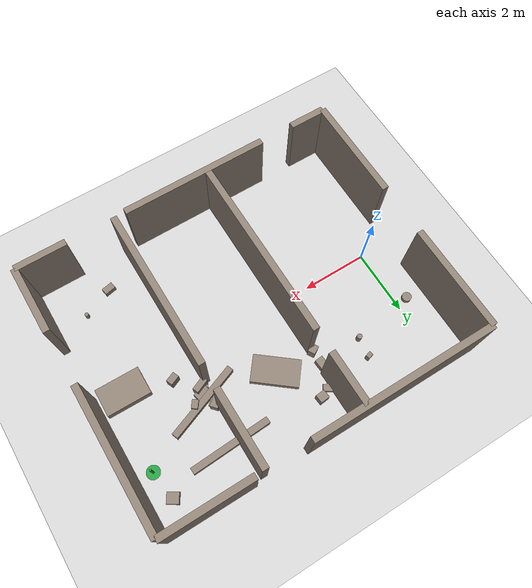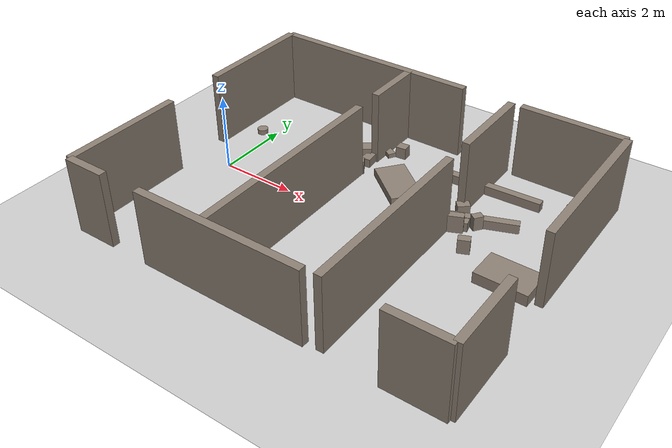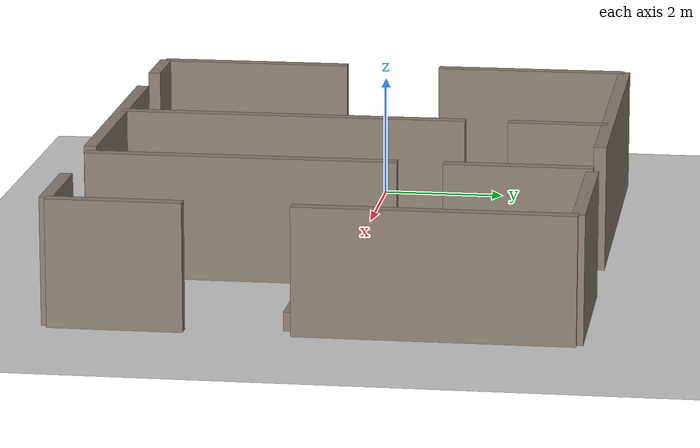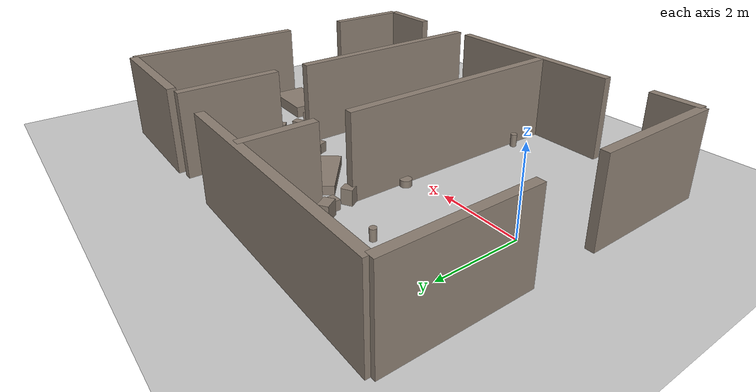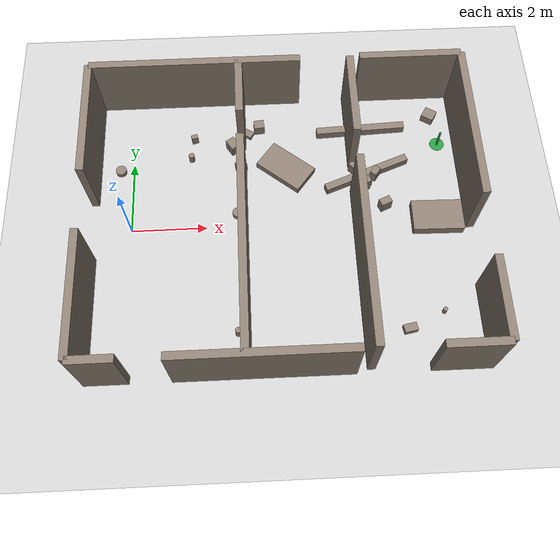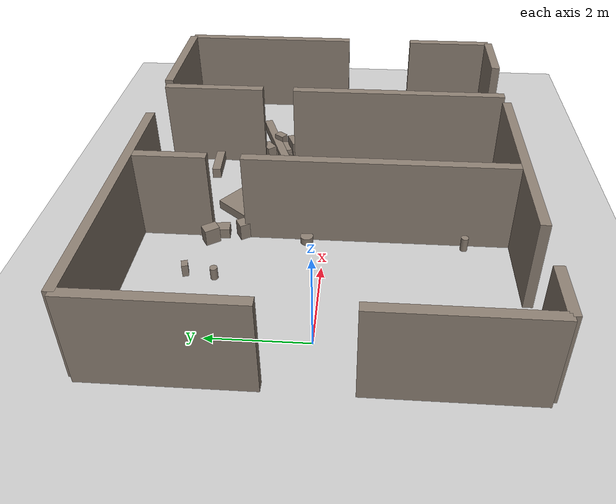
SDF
<sdf version="1.6">
 <world name="default">
  <light name="sun" type="directional">
   <pose>0 0 10 0 -0 0</pose>
   <diffuse>0.8 0.8 0.8 1</diffuse>
   <specular>0.1 0.1 0.1 1</specular>
   <attenuation>
    <range>1000</range>
    <constant>0.9</constant>
    <linear>0.01</linear>
    <quadratic>0.001</quadratic>
   </attenuation>
   <direction>-0.5 0.5 -1</direction>
  </light>
  <model name="ground_plane">
   <static>1</static>
   <link name="link">
    <collision name="collision">
     <geometry><plane><normal>0 0 1</normal><size>100 100</size></plane></geometry>
     <surface><friction><ode><mu>100</mu><mu2>50</mu2></ode></friction></surface>
    </collision>
    <visual name="visual">
     <cast_shadows>0</cast_shadows>
     <geometry><plane><normal>0 0 1</normal><size>100 100</size></plane></geometry>
     <material>
      <script><uri>file://media/materials/scripts/gazebo.material</uri><name>Gazebo/Grey</name></script>
     </material>
    </visual>
   </link>
  </model>
  <gravity>0 0 -9.8</gravity>
  <magnetic_field>6e-06 2.3e-05 -4.2e-05</magnetic_field>
  <atmosphere type="adiabatic"/>
  <physics name="default_physics" default="0" type="ode">
   <max_step_size>0.001</max_step_size>
   <real_time_factor>1</real_time_factor>
   <real_time_update_rate>1000</real_time_update_rate>
  </physics>
  <scene><ambient>0.4 0.4 0.4 1</ambient><background>0.7 0.7 0.7 1</background><shadows>1</shadows></scene>
  <spherical_coordinates>
   <surface_model>EARTH_WGS84</surface_model>
   <latitude_deg>0</latitude_deg>
   <longitude_deg>0</longitude_deg>
   <elevation>0</elevation>
   <heading_deg>0</heading_deg>
  </spherical_coordinates>
  <model name="outer0_0">
   <static>1</static>
   <pose>-1.000 -2.400 1.000 0 0 1.5708</pose>
   <link name="l">
    <collision name="c"><geometry><box><size>3.200 0.200 2.000</size></box></geometry></collision>
    <visual name="v">
     <geometry><box><size>3.200 0.200 2.000</size></box></geometry>
     <material><ambient>0.55 0.5 0.45 1</ambient><diffuse>0.55 0.5 0.45 1</diffuse></material>
    </visual>
   </link>
  </model>
  <model name="outer0_1">
   <static>1</static>
   <pose>-1.000 2.400 1.000 0 0 1.5708</pose>
   <link name="l">
    <collision name="c"><geometry><box><size>3.200 0.200 2.000</size></box></geometry></collision>
    <visual name="v">
     <geometry><box><size>3.200 0.200 2.000</size></box></geometry>
     <material><ambient>0.55 0.5 0.45 1</ambient><diffuse>0.55 0.5 0.45 1</diffuse></material>
    </visual>
   </link>
  </model>
  <model name="outer1_0">
   <static>1</static>
   <pose>9.000 -2.957 1.000 0 0 1.5708</pose>
   <link name="l">
    <collision name="c"><geometry><box><size>2.085 0.200 2.000</size></box></geometry></collision>
    <visual name="v">
     <geometry><box><size>2.085 0.200 2.000</size></box></geometry>
     <material><ambient>0.55 0.5 0.45 1</ambient><diffuse>0.55 0.5 0.45 1</diffuse></material>
    </visual>
   </link>
  </model>
  <model name="outer1_1">
   <static>1</static>
   <pose>9.000 1.861 1.000 0 0 1.5708</pose>
   <link name="l">
    <collision name="c"><geometry><box><size>4.278 0.200 2.000</size></box></geometry></collision>
    <visual name="v">
     <geometry><box><size>4.278 0.200 2.000</size></box></geometry>
     <material><ambient>0.55 0.5 0.45 1</ambient><diffuse>0.55 0.5 0.45 1</diffuse></material>
    </visual>
   </link>
  </model>
  <model name="outer2_0">
   <static>1</static>
   <pose>-0.442 -4.000 1.000 0 0 0.0000</pose>
   <link name="l">
    <collision name="c"><geometry><box><size>1.115 0.200 2.000</size></box></geometry></collision>
    <visual name="v">
     <geometry><box><size>1.115 0.200 2.000</size></box></geometry>
     <material><ambient>0.55 0.5 0.45 1</ambient><diffuse>0.55 0.5 0.45 1</diffuse></material>
    </visual>
   </link>
  </model>
  <model name="outer2_1">
   <static>1</static>
   <pose>3.401 -4.000 1.000 0 0 0.0000</pose>
   <link name="l">
    <collision name="c"><geometry><box><size>4.491 0.200 2.000</size></box></geometry></collision>
    <visual name="v">
     <geometry><box><size>4.491 0.200 2.000</size></box></geometry>
     <material><ambient>0.55 0.5 0.45 1</ambient><diffuse>0.55 0.5 0.45 1</diffuse></material>
    </visual>
   </link>
  </model>
  <model name="outer2_2">
   <static>1</static>
   <pose>8.230 -4.000 1.000 0 0 0.0000</pose>
   <link name="l">
    <collision name="c"><geometry><box><size>1.540 0.200 2.000</size></box></geometry></collision>
    <visual name="v">
     <geometry><box><size>1.540 0.200 2.000</size></box></geometry>
     <material><ambient>0.55 0.5 0.45 1</ambient><diffuse>0.55 0.5 0.45 1</diffuse></material>
    </visual>
   </link>
  </model>
  <model name="outer3_0">
   <static>1</static>
   <pose>1.832 4.000 1.000 0 0 0.0000</pose>
   <link name="l">
    <collision name="c"><geometry><box><size>5.664 0.200 2.000</size></box></geometry></collision>
    <visual name="v">
     <geometry><box><size>5.664 0.200 2.000</size></box></geometry>
     <material><ambient>0.55 0.5 0.45 1</ambient><diffuse>0.55 0.5 0.45 1</diffuse></material>
    </visual>
   </link>
  </model>
  <model name="outer3_1">
   <static>1</static>
   <pose>7.635 4.000 1.000 0 0 0.0000</pose>
   <link name="l">
    <collision name="c"><geometry><box><size>2.729 0.200 2.000</size></box></geometry></collision>
    <visual name="v">
     <geometry><box><size>2.729 0.200 2.000</size></box></geometry>
     <material><ambient>0.55 0.5 0.45 1</ambient><diffuse>0.55 0.5 0.45 1</diffuse></material>
    </visual>
   </link>
  </model>
  <model name="part0_0">
   <static>1</static>
   <pose>3.000 -1.157 1.000 0 0 1.5708</pose>
   <link name="l">
    <collision name="c"><geometry><box><size>5.686 0.200 2.000</size></box></geometry></collision>
    <visual name="v">
     <geometry><box><size>5.686 0.200 2.000</size></box></geometry>
     <material><ambient>0.55 0.5 0.45 1</ambient><diffuse>0.55 0.5 0.45 1</diffuse></material>
    </visual>
   </link>
  </model>
  <model name="part0_1">
   <static>1</static>
   <pose>3.000 3.194 1.000 0 0 1.5708</pose>
   <link name="l">
    <collision name="c"><geometry><box><size>1.613 0.200 2.000</size></box></geometry></collision>
    <visual name="v">
     <geometry><box><size>1.613 0.200 2.000</size></box></geometry>
     <material><ambient>0.55 0.5 0.45 1</ambient><diffuse>0.55 0.5 0.45 1</diffuse></material>
    </visual>
   </link>
  </model>
  <model name="part1_0">
   <static>1</static>
   <pose>6.000 -1.529 1.000 0 0 1.5708</pose>
   <link name="l">
    <collision name="c"><geometry><box><size>4.942 0.200 2.000</size></box></geometry></collision>
    <visual name="v">
     <geometry><box><size>4.942 0.200 2.000</size></box></geometry>
     <material><ambient>0.55 0.5 0.45 1</ambient><diffuse>0.55 0.5 0.45 1</diffuse></material>
    </visual>
   </link>
  </model>
  <model name="part1_1">
   <static>1</static>
   <pose>6.000 2.833 1.000 0 0 1.5708</pose>
   <link name="l">
    <collision name="c"><geometry><box><size>2.335 0.200 2.000</size></box></geometry></collision>
    <visual name="v">
     <geometry><box><size>2.335 0.200 2.000</size></box></geometry>
     <material><ambient>0.55 0.5 0.45 1</ambient><diffuse>0.55 0.5 0.45 1</diffuse></material>
    </visual>
   </link>
  </model>
  <model name="rubble_13">
   <static>1</static>
   <pose>2.955 1.746 0.183 0 0 2.1068</pose>
   <link name="l">
    <collision name="c"><geometry><box><size>0.219 0.259 0.366</size></box></geometry></collision>
    <visual name="v">
     <geometry><box><size>0.219 0.259 0.366</size></box></geometry>
     <material><ambient>0.55 0.5 0.45 1</ambient><diffuse>0.55 0.5 0.45 1</diffuse></material>
    </visual>
   </link>
  </model>
  <model name="rubble_14">
   <static>1</static>
   <pose>2.740 2.408 0.184 0 0 2.1537</pose>
   <link name="l">
    <collision name="c"><geometry><box><size>0.323 0.247 0.367</size></box></geometry></collision>
    <visual name="v">
     <geometry><box><size>0.323 0.247 0.367</size></box></geometry>
     <material><ambient>0.55 0.5 0.45 1</ambient><diffuse>0.55 0.5 0.45 1</diffuse></material>
    </visual>
   </link>
  </model>
  <model name="rubble_15">
   <static>1</static>
   <pose>2.944 2.208 0.119 0 0 1.6504</pose>
   <link name="l">
    <collision name="c"><geometry><box><size>0.347 0.248 0.238</size></box></geometry></collision>
    <visual name="v">
     <geometry><box><size>0.347 0.248 0.238</size></box></geometry>
     <material><ambient>0.55 0.5 0.45 1</ambient><diffuse>0.55 0.5 0.45 1</diffuse></material>
    </visual>
   </link>
  </model>
  <model name="rubble_16">
   <static>1</static>
   <pose>6.274 1.190 0.121 0 0 1.7955</pose>
   <link name="l">
    <collision name="c"><geometry><box><size>0.280 0.414 0.242</size></box></geometry></collision>
    <visual name="v">
     <geometry><box><size>0.280 0.414 0.242</size></box></geometry>
     <material><ambient>0.55 0.5 0.45 1</ambient><diffuse>0.55 0.5 0.45 1</diffuse></material>
    </visual>
   </link>
  </model>
  <model name="rubble_17">
   <static>1</static>
   <pose>6.093 1.614 0.178 0 0 0.7136</pose>
   <link name="l">
    <collision name="c"><geometry><box><size>0.316 0.232 0.357</size></box></geometry></collision>
    <visual name="v">
     <geometry><box><size>0.316 0.232 0.357</size></box></geometry>
     <material><ambient>0.55 0.5 0.45 1</ambient><diffuse>0.55 0.5 0.45 1</diffuse></material>
    </visual>
   </link>
  </model>
  <model name="rubble_18">
   <static>1</static>
   <pose>6.125 1.096 0.071 0 0 2.7536</pose>
   <link name="l">
    <collision name="c"><geometry><box><size>0.148 0.395 0.142</size></box></geometry></collision>
    <visual name="v">
     <geometry><box><size>0.148 0.395 0.142</size></box></geometry>
     <material><ambient>0.55 0.5 0.45 1</ambient><diffuse>0.55 0.5 0.45 1</diffuse></material>
    </visual>
   </link>
  </model>
  <model name="rubble_19">
   <static>1</static>
   <pose>6.150 1.539 0.070 0 0 0.7246</pose>
   <link name="l">
    <collision name="c"><geometry><box><size>0.231 0.170 0.140</size></box></geometry></collision>
    <visual name="v">
     <geometry><box><size>0.231 0.170 0.140</size></box></geometry>
     <material><ambient>0.55 0.5 0.45 1</ambient><diffuse>0.55 0.5 0.45 1</diffuse></material>
    </visual>
   </link>
  </model>
  <model name="rubble_20">
   <static>1</static>
   <pose>6.609 1.368 0.188 0 0 0.9384</pose>
   <link name="l">
    <collision name="c"><geometry><box><size>0.254 0.186 0.375</size></box></geometry></collision>
    <visual name="v">
     <geometry><box><size>0.254 0.186 0.375</size></box></geometry>
     <material><ambient>0.55 0.5 0.45 1</ambient><diffuse>0.55 0.5 0.45 1</diffuse></material>
    </visual>
   </link>
  </model>
  <model name="rubble_21">
   <static>1</static>
   <pose>6.222 0.990 0.236 0 0 1.9764</pose>
   <link name="l">
    <collision name="c"><geometry><box><size>0.186 0.431 0.472</size></box></geometry></collision>
    <visual name="v">
     <geometry><box><size>0.186 0.431 0.472</size></box></geometry>
     <material><ambient>0.55 0.5 0.45 1</ambient><diffuse>0.55 0.5 0.45 1</diffuse></material>
    </visual>
   </link>
  </model>
  <model name="slab_0">
   <static>1</static>
   <pose>8.137 -0.001 0.146 0 0 3.1262</pose>
   <link name="l">
    <collision name="c"><geometry><box><size>1.340 0.848 0.292</size></box></geometry></collision>
    <visual name="v">
     <geometry><box><size>1.340 0.848 0.292</size></box></geometry>
     <material><ambient>0.55 0.5 0.45 1</ambient><diffuse>0.55 0.5 0.45 1</diffuse></material>
    </visual>
   </link>
  </model>
  <model name="slab_1">
   <static>1</static>
   <pose>4.180 1.701 0.106 0 0 2.4686</pose>
   <link name="l">
    <collision name="c"><geometry><box><size>1.398 0.812 0.212</size></box></geometry></collision>
    <visual name="v">
     <geometry><box><size>1.398 0.812 0.212</size></box></geometry>
     <material><ambient>0.55 0.5 0.45 1</ambient><diffuse>0.55 0.5 0.45 1</diffuse></material>
    </visual>
   </link>
  </model>
  <model name="beam_0">
   <static>1</static>
   <pose>6.376 1.394 0.125 0 0 0.3611</pose>
   <link name="l">
    <collision name="c"><geometry><box><size>2.432 0.200 0.250</size></box></geometry></collision>
    <visual name="v">
     <geometry><box><size>2.432 0.200 0.250</size></box></geometry>
     <material><ambient>0.55 0.5 0.45 1</ambient><diffuse>0.55 0.5 0.45 1</diffuse></material>
    </visual>
   </link>
  </model>
  <model name="beam_1">
   <static>1</static>
   <pose>6.332 2.821 0.125 0 0 0.0462</pose>
   <link name="l">
    <collision name="c"><geometry><box><size>2.468 0.200 0.250</size></box></geometry></collision>
    <visual name="v">
     <geometry><box><size>2.468 0.200 0.250</size></box></geometry>
     <material><ambient>0.55 0.5 0.45 1</ambient><diffuse>0.55 0.5 0.45 1</diffuse></material>
    </visual>
   </link>
  </model>
  <model name="debris_0">
   <static>1</static>
   <pose>8.331 3.200 0.127 0 0 2.5836</pose>
   <link name="l">
    <collision name="c"><geometry><box><size>0.343 0.322 0.254</size></box></geometry></collision>
    <visual name="v">
     <geometry><box><size>0.343 0.322 0.254</size></box></geometry>
     <material><ambient>0.55 0.5 0.45 1</ambient><diffuse>0.55 0.5 0.45 1</diffuse></material>
    </visual>
   </link>
  </model>
  <model name="debris_1">
   <static>1</static>
   <pose>1.591 2.113 0.135 0 0 0.0000</pose>
   <link name="l">
    <collision name="c">
     <geometry><cylinder><radius>0.077</radius><length>0.271</length></cylinder></geometry>
    </collision>
    <visual name="v">
     <geometry><cylinder><radius>0.077</radius><length>0.271</length></cylinder></geometry>
     <material><ambient>0.55 0.5 0.45 1</ambient><diffuse>0.55 0.5 0.45 1</diffuse></material>
    </visual>
   </link>
  </model>
  <model name="debris_2">
   <static>1</static>
   <pose>3.485 3.017 0.161 0 0 0.0891</pose>
   <link name="l">
    <collision name="c"><geometry><box><size>0.283 0.254 0.321</size></box></geometry></collision>
    <visual name="v">
     <geometry><box><size>0.283 0.254 0.321</size></box></geometry>
     <material><ambient>0.55 0.5 0.45 1</ambient><diffuse>0.55 0.5 0.45 1</diffuse></material>
    </visual>
   </link>
  </model>
  <model name="debris_3">
   <static>1</static>
   <pose>-0.356 1.806 0.069 0 0 0.0000</pose>
   <link name="l">
    <collision name="c">
     <geometry><cylinder><radius>0.143</radius><length>0.139</length></cylinder></geometry>
    </collision>
    <visual name="v">
     <geometry><cylinder><radius>0.143</radius><length>0.139</length></cylinder></geometry>
     <material><ambient>0.55 0.5 0.45 1</ambient><diffuse>0.55 0.5 0.45 1</diffuse></material>
    </visual>
   </link>
  </model>
  <model name="debris_4">
   <static>1</static>
   <pose>7.072 -3.033 0.096 0 0 1.7663</pose>
   <link name="l">
    <collision name="c"><geometry><box><size>0.208 0.342 0.192</size></box></geometry></collision>
    <visual name="v">
     <geometry><box><size>0.208 0.342 0.192</size></box></geometry>
     <material><ambient>0.55 0.5 0.45 1</ambient><diffuse>0.55 0.5 0.45 1</diffuse></material>
    </visual>
   </link>
  </model>
  <model name="debris_5">
   <static>1</static>
   <pose>1.675 2.717 0.138 0 0 1.8414</pose>
   <link name="l">
    <collision name="c"><geometry><box><size>0.131 0.172 0.275</size></box></geometry></collision>
    <visual name="v">
     <geometry><box><size>0.131 0.172 0.275</size></box></geometry>
     <material><ambient>0.55 0.5 0.45 1</ambient><diffuse>0.55 0.5 0.45 1</diffuse></material>
    </visual>
   </link>
  </model>
  <model name="debris_6">
   <static>1</static>
   <pose>6.787 0.423 0.194 0 0 1.9682</pose>
   <link name="l">
    <collision name="c"><geometry><box><size>0.203 0.305 0.389</size></box></geometry></collision>
    <visual name="v">
     <geometry><box><size>0.203 0.305 0.389</size></box></geometry>
     <material><ambient>0.55 0.5 0.45 1</ambient><diffuse>0.55 0.5 0.45 1</diffuse></material>
    </visual>
   </link>
  </model>
  <model name="debris_7">
   <static>1</static>
   <pose>2.825 0.368 0.080 0 0 0.0000</pose>
   <link name="l">
    <collision name="c">
     <geometry><cylinder><radius>0.135</radius><length>0.161</length></cylinder></geometry>
    </collision>
    <visual name="v">
     <geometry><cylinder><radius>0.135</radius><length>0.161</length></cylinder></geometry>
     <material><ambient>0.55 0.5 0.45 1</ambient><diffuse>0.55 0.5 0.45 1</diffuse></material>
    </visual>
   </link>
  </model>
  <model name="debris_8">
   <static>1</static>
   <pose>3.159 2.870 0.061 0 0 2.6069</pose>
   <link name="l">
    <collision name="c"><geometry><box><size>0.306 0.204 0.123</size></box></geometry></collision>
    <visual name="v">
     <geometry><box><size>0.306 0.204 0.123</size></box></geometry>
     <material><ambient>0.55 0.5 0.45 1</ambient><diffuse>0.55 0.5 0.45 1</diffuse></material>
    </visual>
   </link>
  </model>
  <model name="debris_9">
   <static>1</static>
   <pose>2.785 -2.950 0.158 0 0 0.0000</pose>
   <link name="l">
    <collision name="c">
     <geometry><cylinder><radius>0.077</radius><length>0.317</length></cylinder></geometry>
    </collision>
    <visual name="v">
     <geometry><cylinder><radius>0.077</radius><length>0.317</length></cylinder></geometry>
     <material><ambient>0.55 0.5 0.45 1</ambient><diffuse>0.55 0.5 0.45 1</diffuse></material>
    </visual>
   </link>
  </model>
  <model name="debris_10">
   <static>1</static>
   <pose>7.994 -2.612 0.113 0 0 0.0000</pose>
   <link name="l">
    <collision name="c">
     <geometry><cylinder><radius>0.056</radius><length>0.227</length></cylinder></geometry>
    </collision>
    <visual name="v">
     <geometry><cylinder><radius>0.056</radius><length>0.227</length></cylinder></geometry>
     <material><ambient>0.55 0.5 0.45 1</ambient><diffuse>0.55 0.5 0.45 1</diffuse></material>
    </visual>
   </link>
  </model>
  <model name="goal_marker">
   <static>1</static>
   <pose>8.475 2.325 0 0 0 0</pose>
   <link name="l">
    <visual name="pad">
     <pose>0 0 0.005 0 0 0</pose>
     <geometry><cylinder><radius>0.2</radius><length>0.01</length></cylinder></geometry>
     <material><ambient>0.15 0.6 0.25 1</ambient><diffuse>0.15 0.6 0.25 1</diffuse></material>
    </visual>
    <visual name="pole">
     <pose>0 0 0.3 0 0 0</pose>
     <geometry><cylinder><radius>0.03</radius><length>0.6</length></cylinder></geometry>
     <material><ambient>0.15 0.6 0.25 1</ambient><diffuse>0.15 0.6 0.25 1</diffuse></material>
    </visual>
   </link>
  </model>
 </world>
</sdf>
